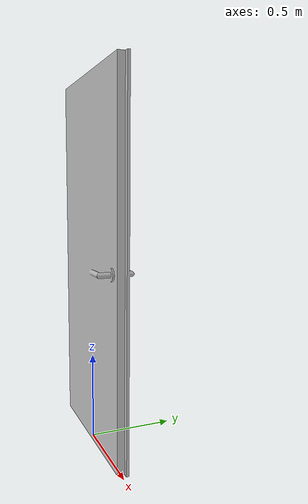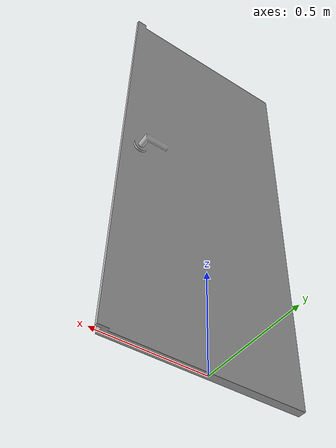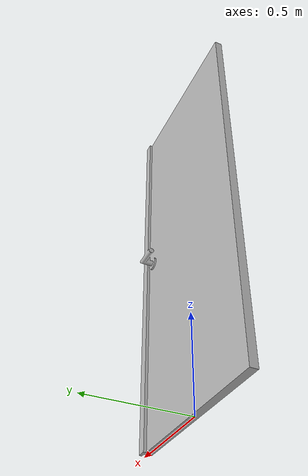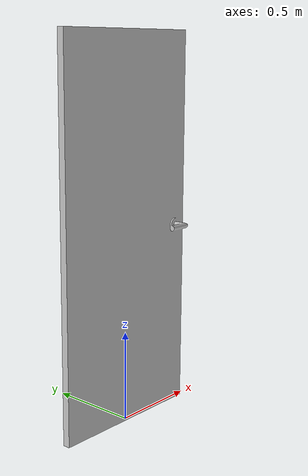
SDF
<?xml version="1.0"?>
<sdf version="1.4">
<model name="dvere_90">
	<pose>0 0 0 0 0 0</pose>
	<static>true</static>
	<link name="dvere_90_collision">
		<collision name="dvere_90_collision">
		<geometry>
			<mesh>
				<uri>model://dvere_90/meshes/model.dae</uri>

			</mesh>
		</geometry>
		</collision>
	<visual name="dvere_90_mesh">
	<cast_shadows>false</cast_shadows>
		<geometry>
			<mesh>
				<uri> model://dvere_90/meshes/model.dae</uri>

			</mesh>
		</geometry>
		<material>
		<script>
			<uri> model://dvere_90/material/scripts</uri>
			<uri> model://dvere_90/material/textures</uri>
			<name>dvere_90/Diffuse</name>
		</script>
		</material>

	</visual>
</link>
</model>
</sdf>
